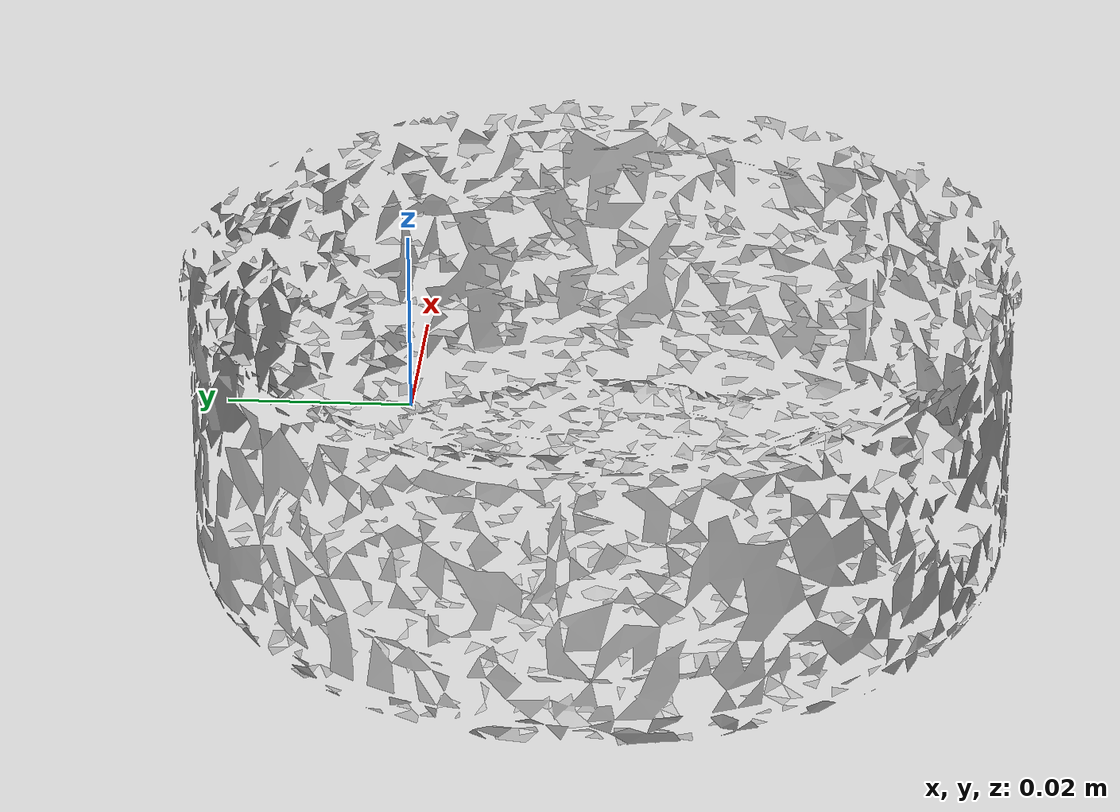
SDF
<?xml version='1.0'?>
<sdf version="1.4">
  <model name="tuna_fish_can">
    <static>false</static>
    <link name="link">
      <inertial>
        <pose>-0.025996325377627645 -0.02214035959406331 0.012989508195911936 -0.4484541480843958 -1.5705852276942327 0.2128510810215045</pose>
        <mass>0.00015261883396786033</mass>
        <inertia>
          <ixx>1.3941298546481143e-07</ixx>
          <ixy>-1.7375619254255153e-23</ixy>
          <ixz>-7.058407175149014e-24</ixz>
          <iyy>7.961242909265219e-08</iyy>
          <iyz>-4.213046493605349e-24</iyz>
          <izz>7.951765546408445e-08</izz>
        </inertia>
      </inertial>
      <collision name="collision">
        <geometry>
          <mesh>
            <!-- Use a downsampled mesh for collisions -->
            <uri>model://007_tuna_fish_can/downsampled.obj</uri>
	        </mesh>
        </geometry>
        <surface>
      </surface>
      </collision>
      <visual name="visual">
        <geometry>
          <mesh>
            <uri>model://007_tuna_fish_can/google_16k/textured.obj</uri>
	        </mesh>
        </geometry>
        <material>
          <script>
            <uri>model://007_tuna_fish_can/tuna_fish_can.material</uri>
            <name>tuna_fish_can</name>
          </script>
        </material>
      </visual>
    </link>
  </model>
</sdf>
